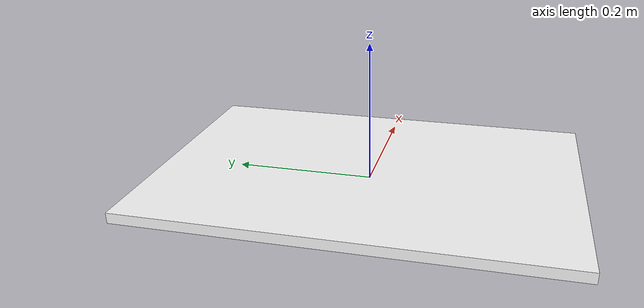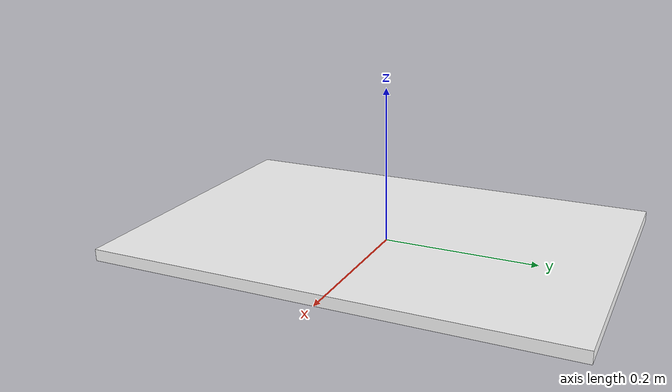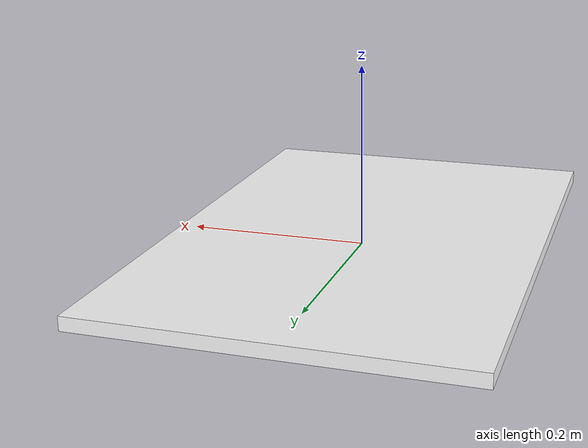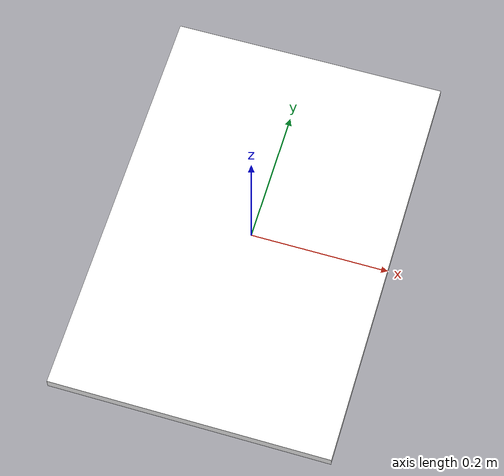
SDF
<?xml version="1.0" ?>
<sdf version='1.6'>
  <model name='bin_model'>
    <!--
    Axes:
      +X - Pointing towards front (slope)
      +Y - Pointing to left side
      +Z - Up
    Origin:
      (0, 0, 0) at the center bottom of the bin
    -->
    <link name='plane_base'>
      <pose frame=''>0 0 0 0 0 0</pose>
      <inertial>
        <pose frame=''>0 0 0 0 0 0</pose>
        <mass>18.70</mass>
        <inertia>
          <ixx>0.79</ixx>
          <ixy>0</ixy>
          <ixz>0</ixz>
          <iyy>0.53</iyy>
          <iyz>0</iyz>
          <izz>1.2</izz>
        </inertia>
      </inertial>
      <visual name='bottom'>
        <pose frame=''>0.0 0.0 0.0075 0 0 0</pose>
        <geometry>
          <box>
            <size>0.4 0.6 0.015</size>
          </box>
        </geometry>
        <material>
           <diffuse>1.0 1.0 1.0 1.0</diffuse>
        </material>
      </visual>
      <collision name='bottom'>
        <pose frame=''>0.0 0.0 0.0075 0 0 0</pose>
        <geometry>
          <box>
            <size>0.4 0.6 0.015</size>
          </box>
        </geometry>
      </collision>
    </link>
    <frame name='plane_front_top_center'>
      <pose frame="plane_base">0. 0 0. 0 0 0</pose>
    </frame>

  </model>
</sdf>
